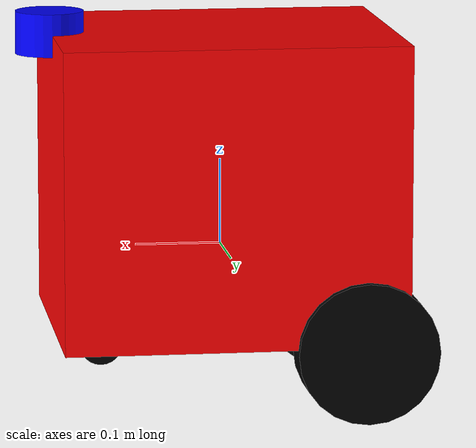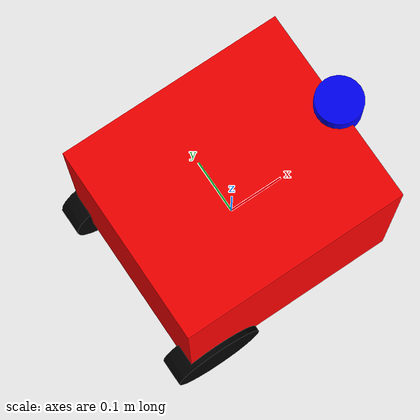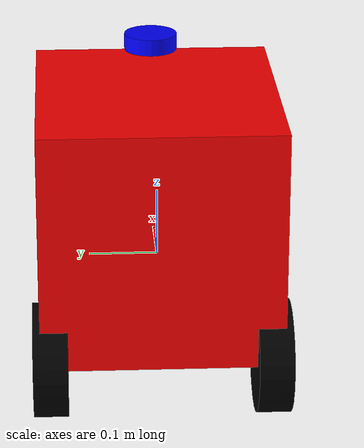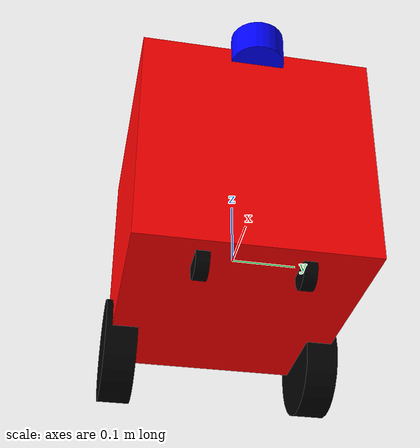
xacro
<?xml version="1.0"?>

<robot name="robot_mecatronica" xmlns:xacro="http://ros.org/wiki/xacro">

  <!-- Include Colors Materials -->
  <material name="red">
    <color rgba="1 0 0 1"/> <!-- Rojo (RGB), opacidad 1 -->
  </material>

  <material name="black">
    <color rgba="0 0 0 1"/> <!-- Negro -->
  </material>

  <material name="blue">
    <color rgba="0 0 1 1"/> <!-- Azul -->
  </material>
  <!-- Include Robot Description -->
  <link name="base_footprint"/>

  <link name="base_link">
    <visual>
      <origin xyz="0 0 0" rpy="0 0 0" />
      <geometry>
        <box size="0.4 0.35 0.35"/> <!-- Dimensiones del chasis -->
      </geometry>
      <material name="red"/>
    </visual>
    <collision>
      <origin xyz="0 0 0" rpy="0 0 0" />
      <geometry>
        <box size="0.4 0.35 0.35"/>
      </geometry>
    </collision>
  </link>

  <joint name="base_joint" type="fixed">
    <parent link="base_footprint"/>
    <child link="base_link" />
    <origin xyz="0 0 0.08" rpy="0 0 0"/>
  </joint>

  <link name="right_wheel">
    <visual>
      <origin xyz="0 0 0" rpy="1.57 0 0" />
      <geometry>
        <cylinder length="0.05" radius="0.0825"/> <!-- Dimensiones de la rueda -->
      </geometry>
      <material name="black"/>
    </visual>
    <collision>
    <origin xyz="-0.15 -0.16 -0.18" rpy="0 0 0"/> <!-- Ajusta estos valores -->
      <geometry>
        <cylinder length="0.05" radius="0.0825"/>
      </geometry>
    </collision>
  </link>

  <joint name="right_wheel" type="continuous">
    <parent link="base_link"/>
    <child link="right_wheel"/>
    <origin xyz="-0.15 0.16 -0.18" rpy="0 0 0"/> <!-- Ajusta estos valores -->
    <axis xyz="0 1 0"/>
  </joint>

  <link name="left_wheel">
    <visual>
      <origin xyz="0 0 0" rpy="-1.57 0 0" />
      <geometry>
        <cylinder length="0.05" radius="0.0825"/> <!-- Dimensiones de la rueda -->
      </geometry>
      <material name="black"/>
    </visual>
    <collision>
      <origin xyz="0 0.015 0" rpy="-1.57 0 0" />
      <geometry>
        <cylinder length="0.05" radius="0.0825"/>
      </geometry>
    </collision>
  </link>

  <joint name="left_wheel" type="continuous">
    <parent link="base_link"/>
    <child link="left_wheel"/>
    <origin xyz="-0.15 -0.16 -0.18" rpy="0 0 0"/> <!-- Ajusta estos valores -->
    <axis xyz="0 1 0"/>
  </joint>
  <!-- Lidar -->

 <link name="laser">
  <visual>
    <origin xyz="0 0 0" rpy="0 0 0"/>
    <geometry>
      <cylinder length="0.05" radius="0.04"/>
    </geometry>
    <material name="blue"/>
  </visual>
  <collision>
    <origin xyz="0 0 0" rpy="0 0 0"/>
    <geometry>
      <cylinder length="0.05" radius="0.04"/>
    </geometry>
  </collision>
</link>

<joint name="laser_joint" type="fixed">
  <parent link="base_link"/>
  <child link="laser"/>
  <origin xyz="0.2 0 0.175" rpy="0 0 0"/>
</joint>

  <!-- Rueda guía izquierda -->
<link name="front_left_guide_wheel">
  <visual>
    <origin xyz="0 0 0" rpy="-1.57 0 0"/> <!-- Ajusta la posición -->
    <geometry>
      <cylinder length="0.02" radius="0.025"/> <!-- Dimensiones de la rueda -->
    </geometry>
    <material name="black"/>
  </visual>
  <collision>
    <origin xyz="0 0 0" rpy="0 0 0"/>
    <geometry>
      <cylinder length="0.02" radius="0.025"/>
    </geometry>
  </collision>
</link>

<joint name="front_left_guide_wheel_joint" type="fixed">
  <parent link="base_link"/>
  <child link="front_left_guide_wheel"/>
  <origin xyz="0.15 -0.075 -0.18" rpy="0 0 0"/>
</joint>

<!-- Rueda guía derecha -->
<link name="front_right_guide_wheel">
  <visual>
    <origin xyz="0 0 0" rpy="-1.57 0 0"/> <!-- Ajusta la posición -->
    <geometry>
      <cylinder length="0.02" radius="0.025"/> <!-- Dimensiones de la rueda -->
    </geometry>
    <material name="black"/>
  </visual>
  <collision>
    <origin xyz="0 0 0" rpy="0 0 0"/>
    <geometry>
      <cylinder length="0.02" radius="0.025"/>
    </geometry>
  </collision>
</link>

<joint name="front_right_guide_wheel_joint" type="fixed">
  <parent link="base_link"/>
  <child link="front_right_guide_wheel"/>
  <origin xyz="0.15 0.075 -0.18" rpy="0 0 0"/>
</joint>

</robot>
